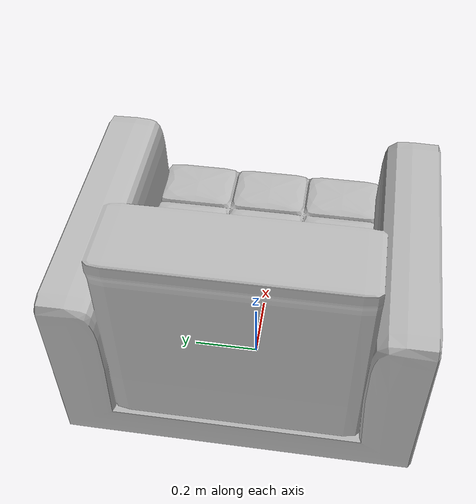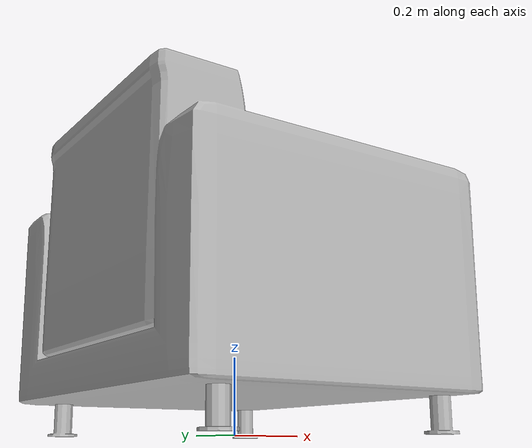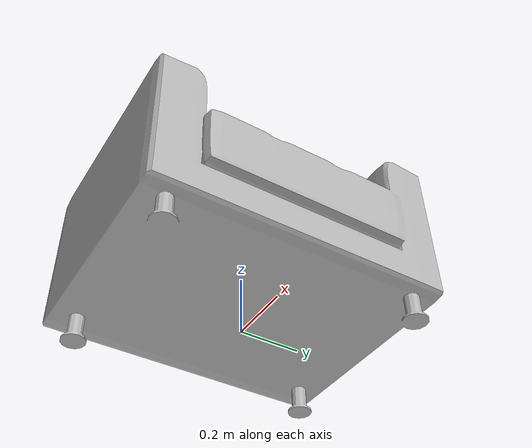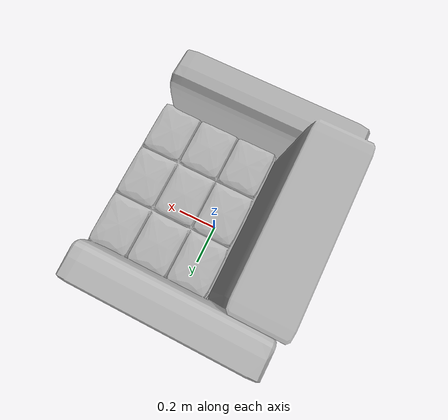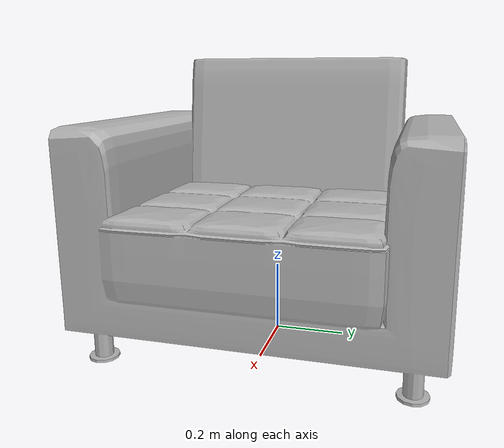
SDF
<?xml version='1.0'?>
<sdf version='1.4'>
  <model name='169'>
    <pose>0 0 0 0 0 0</pose>
    <static>true</static>
    <link name='link'>
      <collision name='collision'>
        <pose>0 0 0 0 0 0</pose>
        <geometry>
          <box>
            <size>0.831232 1.00323 2</size>
          </box>
        </geometry>
      </collision>
      <visual name='visual'>
        <pose>0 0 0 0 0 0</pose>
        <geometry>
          <mesh><uri>model://169/169.dae</uri></mesh>
        </geometry>
      </visual>
    </link>
  </model>
</sdf>
